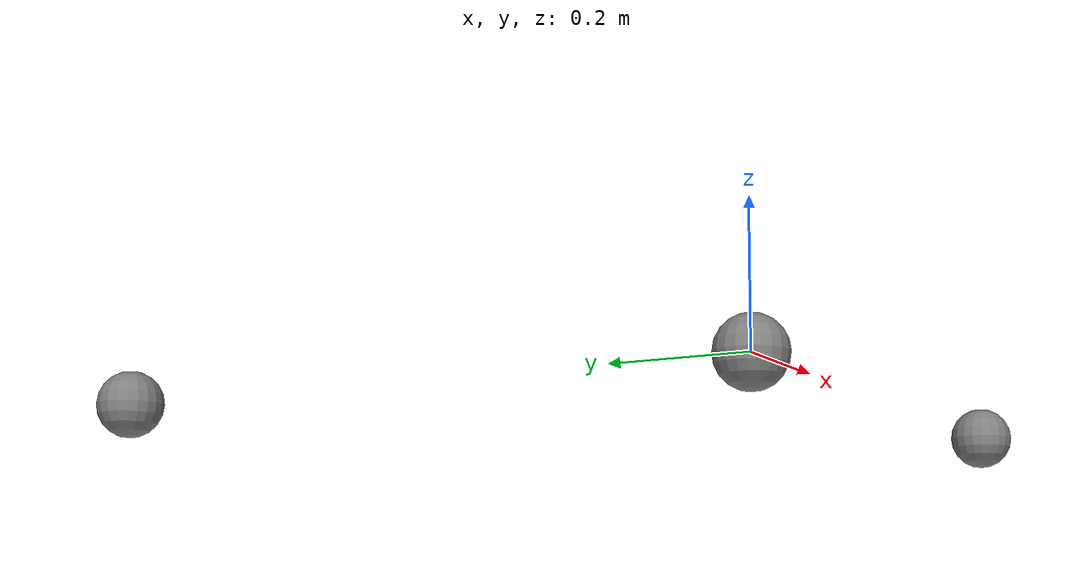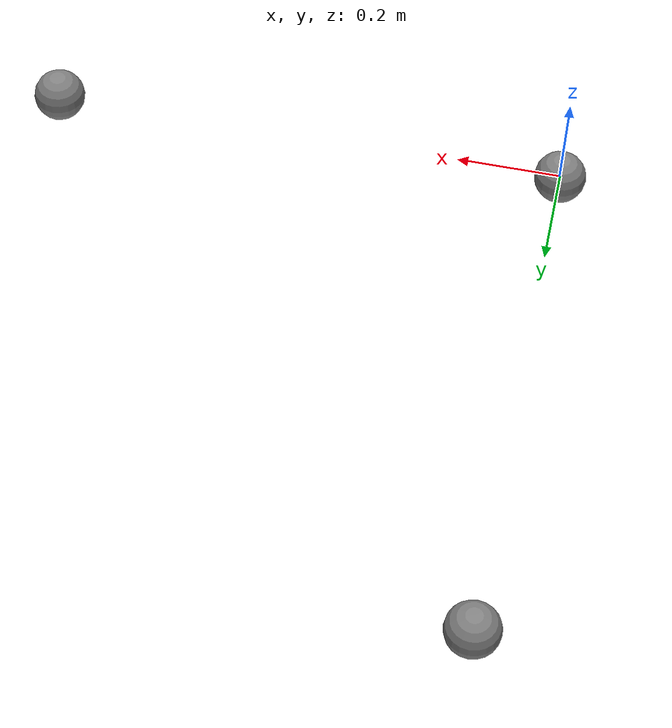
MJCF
<mujoco model="multi-body">
  <compiler angle="radian"/>
  <option gravity="0 0 0" timestep="0.001" integrator="RK4">
    <flag energy="enable"/>
  </option>

  <worldbody>
    <body name="a" pos="0 0 0">
      <freejoint/>
      <inertial pos="0 0 0" mass="1.0" diaginertia="0.01 0.01 0.01"/>
      <geom type="sphere" size="0.05" contype="0" conaffinity="0"/>
    </body>
    <body name="b" pos="1 0 0">
      <freejoint/>
      <inertial pos="0 0 0" mass="2.0" diaginertia="0.02 0.03 0.01"/>
      <geom type="sphere" size="0.05" contype="0" conaffinity="0"/>
    </body>
    <body name="c" pos="0 1 0">
      <freejoint/>
      <inertial pos="0 0 0" mass="0.5" diaginertia="0.005 0.005 0.005"/>
      <geom type="sphere" size="0.05" contype="0" conaffinity="0"/>
    </body>
  </worldbody>
</mujoco>
